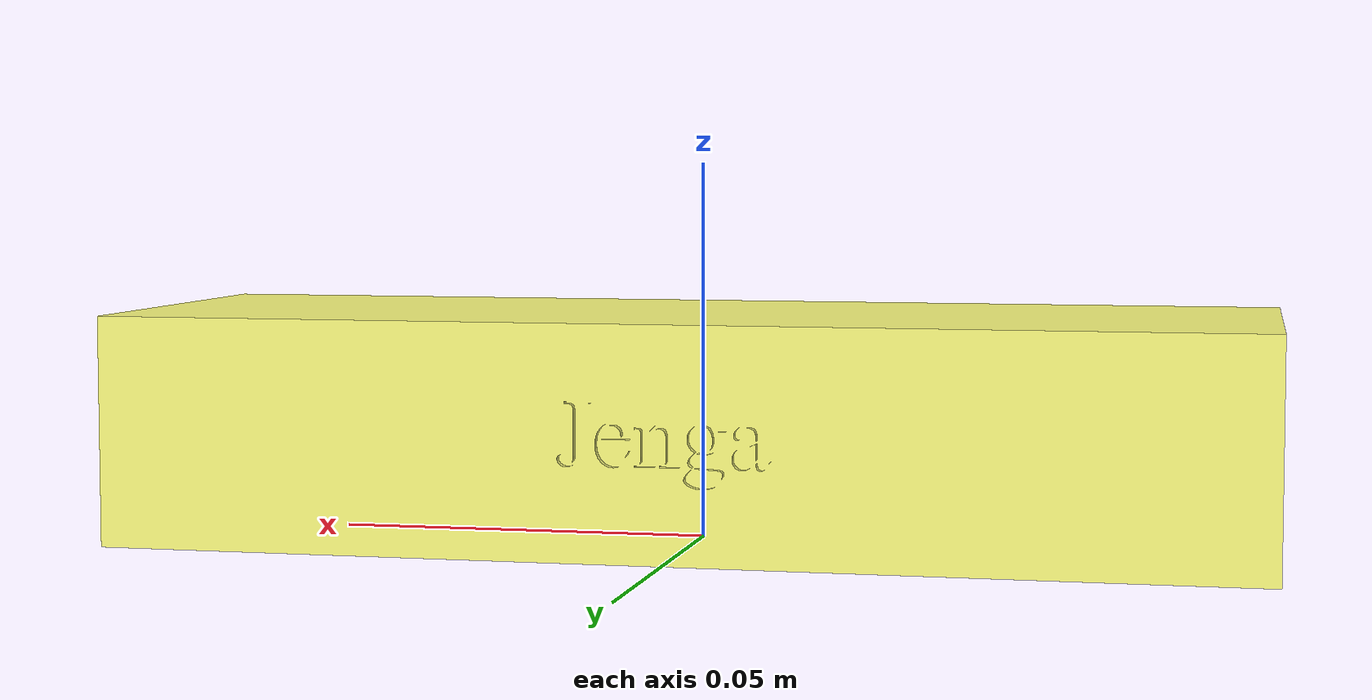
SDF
<?xml version="1.0" ?>
<sdf version='1.4'>
  <model name="jenga_block">
      <static>0</static>
      <link name='link'>
        <inertial>
          <!-- Weight = 0.185lb -> 0.083914588kg-->
          <mass>0.083914588</mass>
          <inertia>
            <ixx>0.00002454271</ixx>
            <ixy>0.000000</ixy>
            <ixz>0.000000</ixz>
            <iyy>0.0001689116</iyy>
            <iyz>0.000000</iyz>
            <izz>0.00018046111</izz>
          </inertia>
        </inertial>
        <collision name='collision'>
          <geometry>
            <mesh>
              <uri>model://jenga_block/meshes/jenga_block.stl</uri>
              <scale>0.001 0.001 0.001</scale>
            </mesh>
          </geometry>
          <surface>
            <friction>
              <ode>
                <mu>30.0</mu>
                <mu2>30.0</mu2>
              </ode>
            </friction>
          </surface>
        </collision>
        <visual name='visual'>
          <geometry>
            <mesh>
              <uri>model://jenga_block/meshes/jenga_block.dae</uri>
              <scale>0.001 0.001 0.001</scale>
            </mesh>
          </geometry>
          <material>
            <diffuse>1 1 0.5 1</diffuse>
          </material>
        </visual>
        <velocity_decay>
          <linear>0.000000</linear>
          <angular>0.000000</angular>
        </velocity_decay>
        <self_collide>0</self_collide>
        <kinematic>0</kinematic>
        <gravity>1</gravity>
      </link>
  </model>
</sdf>
